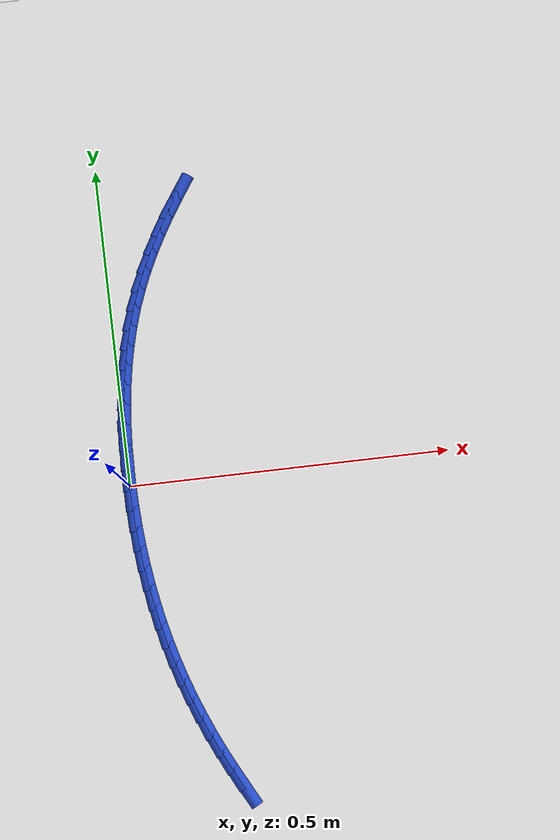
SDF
<sdf version="1.6">
 <world name="default">
  <model name="ground_plane">
   <static>1</static>
   <link name="link">
    <collision name="collision">
     <geometry><plane><normal>0 0 1</normal><size>100 100</size></plane></geometry>
     <surface><friction><ode><mu>100</mu><mu2>50</mu2></ode></friction></surface>
    </collision>
    <visual name="visual">
     <cast_shadows>0</cast_shadows>
     <geometry><plane><normal>0 0 1</normal><size>100 100</size></plane></geometry>
     <material>
      <script><uri>file://media/materials/scripts/gazebo.material</uri><name>Gazebo/WhiteGlow</name></script>
     </material>
    </visual>
   </link>
  </model>
  <model name="line">
   <link name="link_0">
    <pose>-1.9949319973733282e-17 2.0816681711721685e-17 0.01 0 1.57 1.570620473035097</pose>
    <collision name="collision">
     <geometry><cylinder><radius>0.01</radius><length>0.08</length></cylinder></geometry>
    </collision>
    <visual name="visual">
     <material>
      <script><name>Gazebo/Blue</name><uri>file://media/materials/scripts/gazebo.material</uri></script>
     </material>
     <geometry><cylinder><radius>0.01</radius><length>0.08</length></cylinder></geometry>
    </visual>
   </link>
   <link name="link_1">
    <pose>5.557398307164433e-06 0.03160238516496424 0.01 0 1.57 1.5424077104782699</pose>
    <collision name="collision">
     <geometry><cylinder><radius>0.01</radius><length>0.08</length></cylinder></geometry>
    </collision>
    <visual name="visual">
     <material>
      <script><name>Gazebo/Blue</name><uri>file://media/materials/scripts/gazebo.material</uri></script>
     </material>
     <geometry><cylinder><radius>0.01</radius><length>0.08</length></cylinder></geometry>
    </visual>
   </link>
   <link name="link_2">
    <pose>0.0009031028297838526 0.06321027664661913 0.01 0 1.57 1.5117461191069241</pose>
    <collision name="collision">
     <geometry><cylinder><radius>0.01</radius><length>0.08</length></cylinder></geometry>
    </collision>
    <visual name="visual">
     <material>
      <script><name>Gazebo/Blue</name><uri>file://media/materials/scripts/gazebo.material</uri></script>
     </material>
     <geometry><cylinder><radius>0.01</radius><length>0.08</length></cylinder></geometry>
    </visual>
   </link>
   <link name="link_3">
    <pose>0.0027674546846880197 0.09474588796716679 0.01 0 1.57 1.478469907385745</pose>
    <collision name="collision">
     <geometry><cylinder><radius>0.01</radius><length>0.08</length></cylinder></geometry>
    </collision>
    <visual name="visual">
     <material>
      <script><name>Gazebo/Blue</name><uri>file://media/materials/scripts/gazebo.material</uri></script>
     </material>
     <geometry><cylinder><radius>0.01</radius><length>0.08</length></cylinder></geometry>
    </visual>
   </link>
   <link name="link_4">
    <pose>0.00567343135327765 0.12613143264880952 0.01 0 1.57 1.442407670167768</pose>
    <collision name="collision">
     <geometry><cylinder><radius>0.01</radius><length>0.08</length></cylinder></geometry>
    </collision>
    <visual name="visual">
     <material>
      <script><name>Gazebo/Blue</name><uri>file://media/materials/scripts/gazebo.material</uri></script>
     </material>
     <geometry><cylinder><radius>0.01</radius><length>0.08</length></cylinder></geometry>
    </visual>
   </link>
   <link name="link_5">
    <pose>0.009695851225810726 0.15728912421374944 0.01 0 1.57 1.403388178192306</pose>
    <collision name="collision">
     <geometry><cylinder><radius>0.01</radius><length>0.08</length></cylinder></geometry>
    </collision>
    <visual name="visual">
     <material>
      <script><name>Gazebo/Blue</name><uri>file://media/materials/scripts/gazebo.material</uri></script>
     </material>
     <geometry><cylinder><radius>0.01</radius><length>0.08</length></cylinder></geometry>
    </visual>
   </link>
   <link name="link_6">
    <pose>0.014909532692545226 0.18814117618418885 0.01 0 1.57 1.3612483226227403</pose>
    <collision name="collision">
     <geometry><cylinder><radius>0.01</radius><length>0.08</length></cylinder></geometry>
    </collision>
    <visual name="visual">
     <material>
      <script><name>Gazebo/Blue</name><uri>file://media/materials/scripts/gazebo.material</uri></script>
     </material>
     <geometry><cylinder><radius>0.01</radius><length>0.08</length></cylinder></geometry>
    </visual>
   </link>
   <link name="link_7">
    <pose>0.021389294143739135 0.21860980208232994 0.01 0 1.57 1.3158436273427838</pose>
    <collision name="collision">
     <geometry><cylinder><radius>0.01</radius><length>0.08</length></cylinder></geometry>
    </collision>
    <visual name="visual">
     <material>
      <script><name>Gazebo/Blue</name><uri>file://media/materials/scripts/gazebo.material</uri></script>
     </material>
     <geometry><cylinder><radius>0.01</radius><length>0.08</length></cylinder></geometry>
    </visual>
   </link>
   <link name="link_8">
    <pose>0.029209953969650426 0.24861721543037493 0.01 0 1.57 1.2670615961270724</pose>
    <collision name="collision">
     <geometry><cylinder><radius>0.01</radius><length>0.08</length></cylinder></geometry>
    </collision>
    <visual name="visual">
     <material>
      <script><name>Gazebo/Blue</name><uri>file://media/materials/scripts/gazebo.material</uri></script>
     </material>
     <geometry><cylinder><radius>0.01</radius><length>0.08</length></cylinder></geometry>
    </visual>
   </link>
   <link name="link_9">
    <pose>0.038446330560537076 0.27808562975052603 0.01 0 1.57 1.2149383889892116</pose>
    <collision name="collision">
     <geometry><cylinder><radius>0.01</radius><length>0.08</length></cylinder></geometry>
    </collision>
    <visual name="visual">
     <material>
      <script><name>Gazebo/Blue</name><uri>file://media/materials/scripts/gazebo.material</uri></script>
     </material>
     <geometry><cylinder><radius>0.01</radius><length>0.08</length></cylinder></geometry>
    </visual>
   </link>
   <link name="link_10">
    <pose>0.04917057625080608 0.3069389679852818 0.01 0 1.57 1.162907061438042</pose>
    <collision name="collision">
     <geometry><cylinder><radius>0.01</radius><length>0.08</length></cylinder></geometry>
    </collision>
    <visual name="visual">
     <material>
      <script><name>Gazebo/Blue</name><uri>file://media/materials/scripts/gazebo.material</uri></script>
     </material>
     <geometry><cylinder><radius>0.01</radius><length>0.08</length></cylinder></geometry>
    </visual>
   </link>
   <link name="link_11">
    <pose>0.06136502055713026 0.33515874562444475 0.01 0 1.57 1.1153209771724315</pose>
    <collision name="collision">
     <geometry><cylinder><radius>0.01</radius><length>0.08</length></cylinder></geometry>
    </collision>
    <visual name="visual">
     <material>
      <script><name>Gazebo/Blue</name><uri>file://media/materials/scripts/gazebo.material</uri></script>
     </material>
     <geometry><cylinder><radius>0.01</radius><length>0.08</length></cylinder></geometry>
    </visual>
   </link>
   <link name="link_12">
    <pose>0.07490272934567975 0.3627965357681093 0.01 0 1.57 1.0726076503873094</pose>
    <collision name="collision">
     <geometry><cylinder><radius>0.01</radius><length>0.08</length></cylinder></geometry>
    </collision>
    <visual name="visual">
     <material>
      <script><name>Gazebo/Blue</name><uri>file://media/materials/scripts/gazebo.material</uri></script>
     </material>
     <geometry><cylinder><radius>0.01</radius><length>0.08</length></cylinder></geometry>
    </visual>
   </link>
   <link name="link_13">
    <pose>0.08965016741289503 0.3899081439868075 0.01 0 1.57 1.0348352207601546</pose>
    <collision name="collision">
     <geometry><cylinder><radius>0.01</radius><length>0.08</length></cylinder></geometry>
    </collision>
    <visual name="visual">
     <material>
      <script><name>Gazebo/Blue</name><uri>file://media/materials/scripts/gazebo.material</uri></script>
     </material>
     <geometry><cylinder><radius>0.01</radius><length>0.08</length></cylinder></geometry>
    </visual>
   </link>
   <link name="link_14">
    <pose>0.10547379955521644 0.41654937585107144 0.01 0 1.57 1.001991078210965</pose>
    <collision name="collision">
     <geometry><cylinder><radius>0.01</radius><length>0.08</length></cylinder></geometry>
    </collision>
    <visual name="visual">
     <material>
      <script><name>Gazebo/Blue</name><uri>file://media/materials/scripts/gazebo.material</uri></script>
     </material>
     <geometry><cylinder><radius>0.01</radius><length>0.08</length></cylinder></geometry>
    </visual>
   </link>
   <link name="link_15">
    <pose>0.12224009056908439 0.442776036931433 0.01 0 1.57 0.9740098016397701</pose>
    <collision name="collision">
     <geometry><cylinder><radius>0.01</radius><length>0.08</length></cylinder></geometry>
    </collision>
    <visual name="visual">
     <material>
      <script><name>Gazebo/Blue</name><uri>file://media/materials/scripts/gazebo.material</uri></script>
     </material>
     <geometry><cylinder><radius>0.01</radius><length>0.08</length></cylinder></geometry>
    </visual>
   </link>
   <link name="link_194">
    <pose>0.12279354198890167 -0.47822863454342635 0.01 0 1.57 -1.0859250084243677</pose>
    <collision name="collision">
     <geometry><cylinder><radius>0.01</radius><length>0.08</length></cylinder></geometry>
    </collision>
    <visual name="visual">
     <material>
      <script><name>Gazebo/Blue</name><uri>file://media/materials/scripts/gazebo.material</uri></script>
     </material>
     <geometry><cylinder><radius>0.01</radius><length>0.08</length></cylinder></geometry>
    </visual>
   </link>
   <link name="link_195">
    <pose>0.10821239291818925 -0.4505508748362943 0.01 0 1.57 -1.114251254662664</pose>
    <collision name="collision">
     <geometry><cylinder><radius>0.01</radius><length>0.08</length></cylinder></geometry>
    </collision>
    <visual name="visual">
     <material>
      <script><name>Gazebo/Blue</name><uri>file://media/materials/scripts/gazebo.material</uri></script>
     </material>
     <geometry><cylinder><radius>0.01</radius><length>0.08</length></cylinder></geometry>
    </visual>
   </link>
   <link name="link_196">
    <pose>0.09446016432848246 -0.42255099323272743 0.01 0 1.57 -1.1437227034252262</pose>
    <collision name="collision">
     <geometry><cylinder><radius>0.01</radius><length>0.08</length></cylinder></geometry>
    </collision>
    <visual name="visual">
     <material>
      <script><name>Gazebo/Blue</name><uri>file://media/materials/scripts/gazebo.material</uri></script>
     </material>
     <geometry><cylinder><radius>0.01</radius><length>0.08</length></cylinder></geometry>
    </visual>
   </link>
   <link name="link_197">
    <pose>0.08157075574780803 -0.3942278435025139 0.01 0 1.57 -1.1743346836744863</pose>
    <collision name="collision">
     <geometry><cylinder><radius>0.01</radius><length>0.08</length></cylinder></geometry>
    </collision>
    <visual name="visual">
     <material>
      <script><name>Gazebo/Blue</name><uri>file://media/materials/scripts/gazebo.material</uri></script>
     </material>
     <geometry><cylinder><radius>0.01</radius><length>0.08</length></cylinder></geometry>
    </visual>
   </link>
   <link name="link_198">
    <pose>0.06957806670419184 -0.36558027941544025 0.01 0 1.57 -1.2060734355427867</pose>
    <collision name="collision">
     <geometry><cylinder><radius>0.01</radius><length>0.08</length></cylinder></geometry>
    </collision>
    <visual name="visual">
     <material>
      <script><name>Gazebo/Blue</name><uri>file://media/materials/scripts/gazebo.material</uri></script>
     </material>
     <geometry><cylinder><radius>0.01</radius><length>0.08</length></cylinder></geometry>
    </visual>
   </link>
   <link name="link_199">
    <pose>0.058515996725659936 -0.33660715474129316 0.01 0 1.57 -1.2389149700829283</pose>
    <collision name="collision">
     <geometry><cylinder><radius>0.01</radius><length>0.08</length></cylinder></geometry>
    </collision>
    <visual name="visual">
     <material>
      <script><name>Gazebo/Blue</name><uri>file://media/materials/scripts/gazebo.material</uri></script>
     </material>
     <geometry><cylinder><radius>0.01</radius><length>0.08</length></cylinder></geometry>
    </visual>
   </link>
   <link name="link_200">
    <pose>0.0484184453402385 -0.3073073232498597 0.01 0 1.57 -1.2727629102484128</pose>
    <collision name="collision">
     <geometry><cylinder><radius>0.01</radius><length>0.08</length></cylinder></geometry>
    </collision>
    <visual name="visual">
     <material>
      <script><name>Gazebo/Blue</name><uri>file://media/materials/scripts/gazebo.material</uri></script>
     </material>
     <geometry><cylinder><radius>0.01</radius><length>0.08</length></cylinder></geometry>
    </visual>
   </link>
   <link name="link_201">
    <pose>0.03931759067436154 -0.2776804858477295 0.01 0 1.57 -1.3065665299200853</pose>
    <collision name="collision">
     <geometry><cylinder><radius>0.01</radius><length>0.08</length></cylinder></geometry>
    </collision>
    <visual name="visual">
     <material>
      <script><name>Gazebo/Blue</name><uri>file://media/materials/scripts/gazebo.material</uri></script>
     </material>
     <geometry><cylinder><radius>0.01</radius><length>0.08</length></cylinder></geometry>
    </visual>
   </link>
   <link name="link_202">
    <pose>0.031217117499651757 -0.24774036560203455 0.01 0 1.57 -1.339476090778029</pose>
    <collision name="collision">
     <geometry><cylinder><radius>0.01</radius><length>0.08</length></cylinder></geometry>
    </collision>
    <visual name="visual">
     <material>
      <script><name>Gazebo/Blue</name><uri>file://media/materials/scripts/gazebo.material</uri></script>
     </material>
     <geometry><cylinder><radius>0.01</radius><length>0.08</length></cylinder></geometry>
    </visual>
   </link>
   <link name="link_203">
    <pose>0.024097286938567816 -0.21751221283499314 0.01 0 1.57 -1.3714619729088784</pose>
    <collision name="collision">
     <geometry><cylinder><radius>0.01</radius><length>0.08</length></cylinder></geometry>
    </collision>
    <visual name="visual">
     <material>
      <script><name>Gazebo/Blue</name><uri>file://media/materials/scripts/gazebo.material</uri></script>
     </material>
     <geometry><cylinder><radius>0.01</radius><length>0.08</length></cylinder></geometry>
    </visual>
   </link>
   <link name="link_204">
    <pose>0.017937664869770265 -0.18702162001246192 0.01 0 1.57 -1.4025269096313486</pose>
    <collision name="collision">
     <geometry><cylinder><radius>0.01</radius><length>0.08</length></cylinder></geometry>
    </collision>
    <visual name="visual">
     <material>
      <script><name>Gazebo/Blue</name><uri>file://media/materials/scripts/gazebo.material</uri></script>
     </material>
     <geometry><cylinder><radius>0.01</radius><length>0.08</length></cylinder></geometry>
    </visual>
   </link>
   <link name="link_205">
    <pose>0.012717817171919823 -0.15629417960029826 0.01 0 1.57 -1.4326803842236457</pose>
    <collision name="collision">
     <geometry><cylinder><radius>0.01</radius><length>0.08</length></cylinder></geometry>
    </collision>
    <visual name="visual">
     <material>
      <script><name>Gazebo/Blue</name><uri>file://media/materials/scripts/gazebo.material</uri></script>
     </material>
     <geometry><cylinder><radius>0.01</radius><length>0.08</length></cylinder></geometry>
    </visual>
   </link>
   <link name="link_206">
    <pose>0.00841730972367723 -0.12535548406435945 0.01 0 1.57 -1.4619377239908404</pose>
    <collision name="collision">
     <geometry><cylinder><radius>0.01</radius><length>0.08</length></cylinder></geometry>
    </collision>
    <visual name="visual">
     <material>
      <script><name>Gazebo/Blue</name><uri>file://media/materials/scripts/gazebo.material</uri></script>
     </material>
     <geometry><cylinder><radius>0.01</radius><length>0.08</length></cylinder></geometry>
    </visual>
   </link>
   <link name="link_207">
    <pose>0.005015708403703212 -0.0942311258705029 0.01 0 1.57 -1.4903192325595649</pose>
    <collision name="collision">
     <geometry><cylinder><radius>0.01</radius><length>0.08</length></cylinder></geometry>
    </collision>
    <visual name="visual">
     <material>
      <script><name>Gazebo/Blue</name><uri>file://media/materials/scripts/gazebo.material</uri></script>
     </material>
     <geometry><cylinder><radius>0.01</radius><length>0.08</length></cylinder></geometry>
    </visual>
   </link>
   <link name="link_208">
    <pose>0.0024925790906585154 -0.06294669748458595 0.01 0 1.57 -1.5178493791921008</pose>
    <collision name="collision">
     <geometry><cylinder><radius>0.01</radius><length>0.08</length></cylinder></geometry>
    </collision>
    <visual name="visual">
     <material>
      <script><name>Gazebo/Blue</name><uri>file://media/materials/scripts/gazebo.material</uri></script>
     </material>
     <geometry><cylinder><radius>0.01</radius><length>0.08</length></cylinder></geometry>
    </visual>
   </link>
   <link name="link_209">
    <pose>0.0008274876632038317 -0.031527791372465114 0.01 0 1.57 -1.5445560576296584</pose>
    <collision name="collision">
     <geometry><cylinder><radius>0.01</radius><length>0.08</length></cylinder></geometry>
    </collision>
    <visual name="visual">
     <material>
      <script><name>Gazebo/Blue</name><uri>file://media/materials/scripts/gazebo.material</uri></script>
     </material>
     <geometry><cylinder><radius>0.01</radius><length>0.08</length></cylinder></geometry>
    </visual>
   </link>
   <link name="link_210">
    <pose>-1.214306433183765e-17 -3.469446951953614e-17 0.01 0 1.57 -1.5704699216684088</pose>
    <collision name="collision">
     <geometry><cylinder><radius>0.01</radius><length>0.08</length></cylinder></geometry>
    </collision>
    <visual name="visual">
     <material>
      <script><name>Gazebo/Blue</name><uri>file://media/materials/scripts/gazebo.material</uri></script>
     </material>
     <geometry><cylinder><radius>0.01</radius><length>0.08</length></cylinder></geometry>
    </visual>
   </link>
   <link name="link_211">
    <pose>-1.031802029236896e-05 0.031611084166954156 0.01 0 1.57 1.5459688531903046</pose>
    <collision name="collision">
     <geometry><cylinder><radius>0.01</radius><length>0.08</length></cylinder></geometry>
    </collision>
    <visual name="visual">
     <material>
      <script><name>Gazebo/Blue</name><uri>file://media/materials/scripts/gazebo.material</uri></script>
     </material>
     <geometry><cylinder><radius>0.01</radius><length>0.08</length></cylinder></geometry>
    </visual>
   </link>
   <link name="link_212">
    <pose>0.0007760994809875715 0.06327986866254087 0.01 0 1.57 1.5585323858694922</pose>
    <collision name="collision">
     <geometry><cylinder><radius>0.01</radius><length>0.08</length></cylinder></geometry>
    </collision>
    <visual name="visual">
     <material>
      <script><name>Gazebo/Blue</name><uri>file://media/materials/scripts/gazebo.material</uri></script>
     </material>
     <geometry><cylinder><radius>0.01</radius><length>0.08</length></cylinder></geometry>
    </visual>
   </link>
  </model>
 </world>
</sdf>
